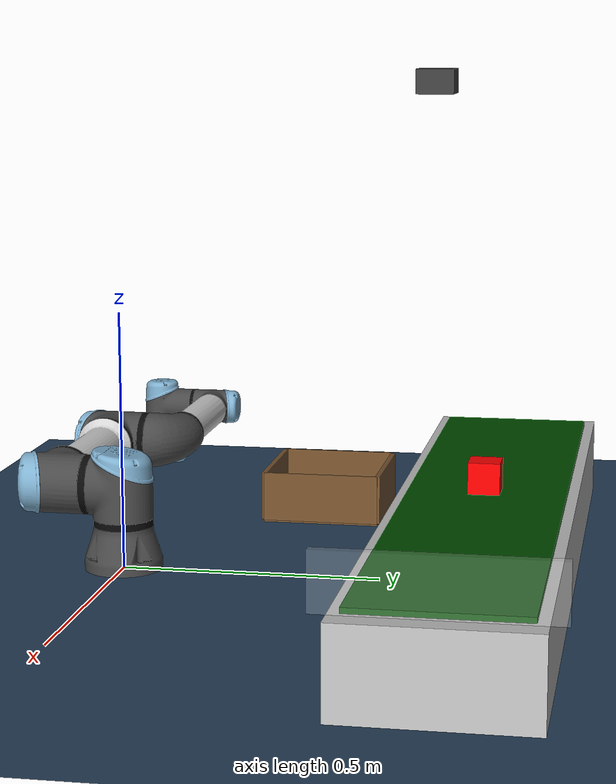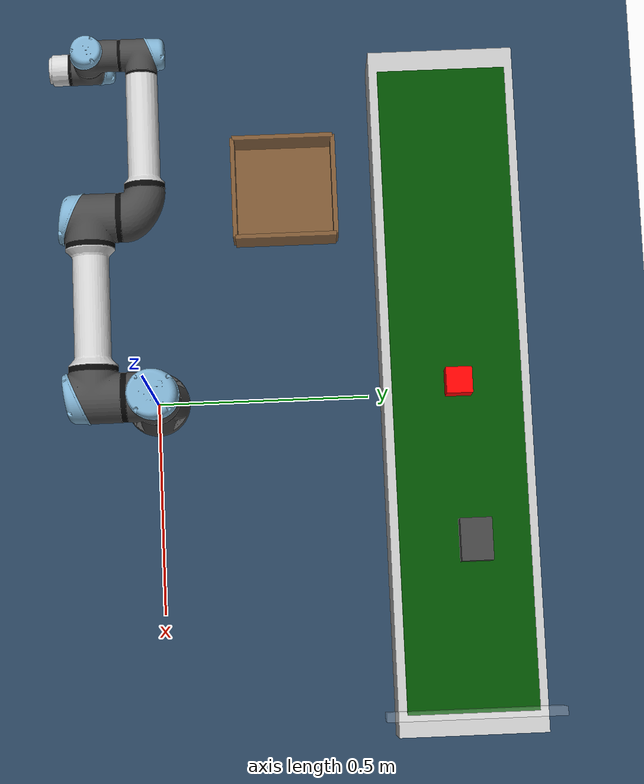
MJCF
<!-- original scene.xml from universal_robots_ur5e scene in Mujoco menagerire Github-->
<mujoco model="UR5E Scene">
  <include file="ur5e.xml"/>
  <include file="C:\Users\u3009531\PycharmProjects\PythonProject\mujoco_menagerie\robotiq_2f85\2f85.xml"/>

  <visual>
    <headlight diffuse="0.6 0.6 0.6" ambient="0.1 0.1 0.1" specular="0 0 0"/>
    <rgba haze="0.15 0.25 0.35 1"/>
    <global azimuth="120" elevation="-20"/>

  </visual>

  <asset>
    <texture type="skybox" builtin="gradient" rgb1="0.3 0.5 0.7" rgb2="0 0 0" width="512" height="3072"/>
    <texture type="2d" name="groundplane" builtin="checker" mark="edge" rgb1="0.2 0.3 0.4" rgb2="0.1 0.2 0.3"
      markrgb="0.8 0.8 0.8" width="300" height="300"/>
    <material name="groundplane" texture="groundplane" texuniform="true" texrepeat="5 5" reflectance="0.2"/>
  </asset>

  <default>
    <default class="wall_contact">
      <geom solref="0.05 0.1" solimp="0.95 0.99 0.001"/>
    </default>
  </default>

  <worldbody>
    <light pos="0 0 1.5" dir="0 0 -1" directional="true"/>
    <geom name="floor" size="0 0 0.05" type="plane" material="groundplane"/>

    <body name="conveyor_base" pos="0 0.7 0.08">
      <geom type="box" size="0.8 0.17 0.08" rgba="0.75 0.75 0.75 1"/>
    </body>

    <body name="belt" pos="0 0.7 0.16">
      <geom name="belt_geom" type="box"
        size="0.75 0.15 0.01"
        rgba="0 0.3 0 1"
        contype="1" conaffinity="1"
        friction="1.2 0.005 0.0001"
        solref="0.002 1"
        solimp="0.95 0.99 0.001"
        margin="0.001"
        gap="0" surfacevel="0.2 0 0"/>
      </body>

    <body name="box_body" pos="0 0.7 0.21">
      <freejoint name="box_joint"/>
      <inertial mass="0.05" pos="0 0 0"
           diaginertia="8e-5 8e-5 8e-5"/>
      <geom name="box_geom" type="box"
        size="0.03 0.03 0.03"
        rgba="1 0 0 1"
        mass="0.05"
        contype="1" conaffinity="1"
        friction="1.2 0.005 0.0001"
        solref="0.002 1"
        solimp="0.95 0.99 0.001"
        margin="0.001"
        priority="1"/>
        <site name="box_site" type="box" size="0.03 0.03 0.03" rgba="1 0 0 0"/>
        <site name="box_velocity_site" pos="0 0 0" size="0.03" rgba="0 0.2 1 0"/>
    </body>

    <geom name="wall1" class="wall_contact" type="box" size="0.01 0.2 0.05" pos="-0.75 0.7 0.21" rgba="0.2 0.2 0.8 0"/>

    <body pos="0.75 0.7 0.21" >
      <geom name="wall2" class="wall_contact" type="box" size="0.01 0.2 0.05" rgba="1 1 1 0.1"/>
    </body>

    <body name="overhead_camera_body" pos="0.4 0.65 0.95">
      <geom type="box" size="0.04 0.03 0.02" rgba="0.25 0.25 0.25 1" contype="0" conaffinity="0"/>
      <camera name="overhead_cam" mode="fixed" pos="0 0 0" xyaxes="1 0 0 0 1 0" fovy="45" resolution="640 480"/>
    </body>

    <body name="drop_box" pos="-0.5 0.32 0.01">
    <!-- Box floor -->
      <geom type="box" size="0.12 0.12 0.005" rgba="0.6 0.4 0.2 0.8"  contype="1" conaffinity="1"
        friction="1.2 0.005 0.0001" solref="0.002 1" solimp="0.95 0.99 0.001" margin="0.001" gap="0"/>
      <!-- Front wall (Y+) -->
      <geom type="box" size="0.12 0.005 0.05" pos="0 0.12 0.05" rgba="0.6 0.4 0.2 0.8" friction="0.8 0.005 0.001"/>
      <!-- Back wall (Y-) -->
      <geom type="box" size="0.12 0.005 0.05" pos="0 -0.12 0.05" rgba="0.6 0.4 0.2 0.8" friction="0.8 0.005 0.001"/>
      <!-- Left wall (X-) -->
      <geom type="box" size="0.005 0.12 0.05" pos="-0.12 0 0.05" rgba="0.6 0.4 0.2 0.8" friction="0.8 0.005 0.001"/>
      <!-- Right wall (X+) -->
      <geom type="box" size="0.005 0.12 0.05" pos="0.12 0 0.05" rgba="0.6 0.4 0.2 0.8" friction="0.8 0.005 0.001"/>
    </body>

<!--&lt;!&ndash; Ball &ndash;&gt;-->

  </worldbody>

  <equality>

    <weld body1="base_mount" body2="wrist_3_link"
          anchor="0 0.1 0"
          relpose="0 0 0 0.707 0.707 0 0"
          solref="0.01 1"
          solimp="0.9 0.95 0.001"/>
  </equality>

   <sensor>
     <framelinvel name="vel2" objtype="site" objname="box_velocity_site"/>
     <velocimeter name="box_velocity" site="box_velocity_site"/>
     <touch name="collisions" site="box_site"/>

  </sensor>

  <actuator>
    <velocity name="box_velocity" joint="box_joint" ctrlrange="-20 20"/>
  </actuator>

  <contact>

    <exclude body1="base_mount" body2="wrist_3_link"/>
    <exclude body1="base2"      body2="wrist_3_link"/>
    <exclude body1="base_mount" body2="wrist_2_link"/>
    <exclude body1="base2"      body2="wrist_2_link"/>
    <exclude body1="base2"      body2="forearm_link"/>
  </contact>

</mujoco>

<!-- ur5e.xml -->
<mujoco model="ur5e">
  <compiler angle="radian" meshdir="C:\Users\u3009531\PycharmProjects\PythonProject\mujoco_menagerie\universal_robots_ur5e\assets" autolimits="true"/>

  <option integrator="implicitfast"/>

  <default>
    <default class="ur5e">
      <material specular="0.5" shininess="0.25"/>
      <joint axis="0 1 0" range="-6.28319 6.28319" armature="0.1"/>
      <general gaintype="fixed" biastype="affine" ctrlrange="-6.2831 6.2831" gainprm="2000" biasprm="0 -2000 -400"
        forcerange="-150 150"/>
      <default class="size3">
        <default class="size3_limited">
          <joint range="-3.1415 3.1415"/>
          <general ctrlrange="-3.1415 3.1415"/>
        </default>
      </default>
      <default class="size1">
        <general gainprm="500" biasprm="0 -500 -100" forcerange="-28 28"/>
      </default>
      <default class="visual">
        <geom type="mesh" contype="0" conaffinity="0" group="2"/>
      </default>
      <default class="collision">
        <geom type="capsule" group="3"/>
        <default class="eef_collision">
          <geom type="cylinder"/>
        </default>
      </default>
      <site size="0.001" rgba="0.5 0.5 0.5 0.3" group="4"/>
    </default>
  </default>

  <asset>
    <material class="ur5e" name="black" rgba="0.033 0.033 0.033 1"/>
    <material class="ur5e" name="jointgray" rgba="0.278 0.278 0.278 1"/>
    <material class="ur5e" name="linkgray" rgba="0.82 0.82 0.82 1"/>
    <material class="ur5e" name="urblue" rgba="0.49 0.678 0.8 1"/>

    <mesh class="ur5e" name="base_0" file="C:\Users\u3009531\PycharmProjects\PythonProject\mujoco_menagerie\universal_robots_ur5e\assets\base_0.obj"/>
    <mesh class="ur5e" name="base_1" file="C:\Users\u3009531\PycharmProjects\PythonProject\mujoco_menagerie\universal_robots_ur5e\assets\base_1.obj"/>
    <mesh class="ur5e" name="shoulder_0" file="C:\Users\u3009531\PycharmProjects\PythonProject\mujoco_menagerie\universal_robots_ur5e\assets\shoulder_0.obj"/>
    <mesh class="ur5e" name="shoulder_1" file="C:\Users\u3009531\PycharmProjects\PythonProject\mujoco_menagerie\universal_robots_ur5e\assets\shoulder_1.obj"/>
    <mesh class="ur5e" name="shoulder_2" file="C:\Users\u3009531\PycharmProjects\PythonProject\mujoco_menagerie\universal_robots_ur5e\assets\shoulder_2.obj"/>
    <mesh class="ur5e" name="upperarm_0" file="C:\Users\u3009531\PycharmProjects\PythonProject\mujoco_menagerie\universal_robots_ur5e\assets\upperarm_0.obj"/>
    <mesh class="ur5e" name="upperarm_1" file="C:\Users\u3009531\PycharmProjects\PythonProject\mujoco_menagerie\universal_robots_ur5e\assets\upperarm_1.obj"/>
    <mesh class="ur5e" name="upperarm_2" file="C:\Users\u3009531\PycharmProjects\PythonProject\mujoco_menagerie\universal_robots_ur5e\assets\upperarm_2.obj"/>
    <mesh class="ur5e" name="upperarm_3" file="C:\Users\u3009531\PycharmProjects\PythonProject\mujoco_menagerie\universal_robots_ur5e\assets\upperarm_3.obj"/>
    <mesh class="ur5e" name="forearm_0" file="C:\Users\u3009531\PycharmProjects\PythonProject\mujoco_menagerie\universal_robots_ur5e\assets\forearm_0.obj"/>
    <mesh class="ur5e" name="forearm_1" file="C:\Users\u3009531\PycharmProjects\PythonProject\mujoco_menagerie\universal_robots_ur5e\assets\forearm_1.obj"/>
    <mesh class="ur5e" name="forearm_2" file="C:\Users\u3009531\PycharmProjects\PythonProject\mujoco_menagerie\universal_robots_ur5e\assets\forearm_2.obj"/>
    <mesh class="ur5e" name="forearm_3" file="C:\Users\u3009531\PycharmProjects\PythonProject\mujoco_menagerie\universal_robots_ur5e\assets\forearm_3.obj"/>
    <mesh class="ur5e" name="wrist1_0" file="C:\Users\u3009531\PycharmProjects\PythonProject\mujoco_menagerie\universal_robots_ur5e\assets\wrist1_0.obj"/>
    <mesh class="ur5e" name="wrist1_1" file="C:\Users\u3009531\PycharmProjects\PythonProject\mujoco_menagerie\universal_robots_ur5e\assets\wrist1_1.obj"/>
    <mesh class="ur5e" name="wrist1_2" file="C:\Users\u3009531\PycharmProjects\PythonProject\mujoco_menagerie\universal_robots_ur5e\assets\wrist1_2.obj"/>
    <mesh class="ur5e" name="wrist2_0" file="C:\Users\u3009531\PycharmProjects\PythonProject\mujoco_menagerie\universal_robots_ur5e\assets\wrist2_0.obj"/>
    <mesh class="ur5e" name="wrist2_1" file="C:\Users\u3009531\PycharmProjects\PythonProject\mujoco_menagerie\universal_robots_ur5e\assets\wrist2_1.obj"/>
    <mesh class="ur5e" name="wrist2_2" file="C:\Users\u3009531\PycharmProjects\PythonProject\mujoco_menagerie\universal_robots_ur5e\assets\wrist2_2.obj"/>
    <mesh class="ur5e" name="wrist3" file="C:\Users\u3009531\PycharmProjects\PythonProject\mujoco_menagerie\universal_robots_ur5e\assets\wrist3.obj"/>
  </asset>

  <worldbody>
    <light name="spotlight" mode="targetbodycom" target="wrist_2_link" pos="0 -1 2"/>
    <body name="base" quat="0 0 0 -1" childclass="ur5e">
      <inertial mass="4.0" pos="0 0 0" diaginertia="0.00443333156 0.00443333156 0.0072"/>
      <geom mesh="base_0" material="black" class="visual"/>
      <geom mesh="base_1" material="jointgray" class="visual"/>
      <body name="shoulder_link" pos="0 0 0.163">
        <inertial mass="3.7" pos="0 0 0" diaginertia="0.0102675 0.0102675 0.00666"/>
        <joint name="shoulder_pan_joint" class="size3" axis="0 0 1"/>
        <geom mesh="shoulder_0" material="urblue" class="visual"/>
        <geom mesh="shoulder_1" material="black" class="visual"/>
        <geom mesh="shoulder_2" material="jointgray" class="visual"/>
        <geom class="collision" size="0.06 0.06" pos="0 0 -0.04"/>
        <body name="upper_arm_link" pos="0 0.138 0" quat="1 0 1 0">
          <inertial mass="8.393" pos="0 0 0.2125" diaginertia="0.133886 0.133886 0.0151074"/>
          <joint name="shoulder_lift_joint" class="size3"/>
          <geom mesh="upperarm_0" material="linkgray" class="visual"/>
          <geom mesh="upperarm_1" material="black" class="visual"/>
          <geom mesh="upperarm_2" material="jointgray" class="visual"/>
          <geom mesh="upperarm_3" material="urblue" class="visual"/>
          <geom class="collision" pos="0 -0.04 0" quat="1 1 0 0" size="0.06 0.06"/>
          <geom class="collision" size="0.05 0.2" pos="0 0 0.2"/>
          <body name="forearm_link" pos="0 -0.131 0.425">
            <inertial mass="2.275" pos="0 0 0.196" diaginertia="0.0311796 0.0311796 0.004095"/>
            <joint name="elbow_joint" class="size3_limited"/>
            <geom mesh="forearm_0" material="urblue" class="visual"/>
            <geom mesh="forearm_1" material="linkgray" class="visual"/>
            <geom mesh="forearm_2" material="black" class="visual"/>
            <geom mesh="forearm_3" material="jointgray" class="visual"/>
            <geom class="collision" pos="0 0.08 0" quat="1 1 0 0" size="0.055 0.06"/>
            <geom class="collision" size="0.038 0.19" pos="0 0 0.2"/>
            <body name="wrist_1_link" pos="0 0 0.392" quat="1 0 1 0">
              <inertial mass="1.219" pos="0 0.127 0" diaginertia="0.0025599 0.0025599 0.0021942"/>
              <joint name="wrist_1_joint" class="size1"/>
              <geom mesh="wrist1_0" material="black" class="visual"/>
              <geom mesh="wrist1_1" material="urblue" class="visual"/>
              <geom mesh="wrist1_2" material="jointgray" class="visual"/>
              <geom class="collision" pos="0 0.05 0" quat="1 1 0 0" size="0.04 0.07"/>
              <body name="wrist_2_link" pos="0 0.127 0">
                <inertial mass="1.219" pos="0 0 0.1" diaginertia="0.0025599 0.0025599 0.0021942"/>
                <joint name="wrist_2_joint" axis="0 0 1" class="size1"/>
                <geom mesh="wrist2_0" material="black" class="visual"/>
                <geom mesh="wrist2_1" material="urblue" class="visual"/>
                <geom mesh="wrist2_2" material="jointgray" class="visual"/>
                <geom class="collision" size="0.04 0.06" pos="0 0 0.04"/>
                <geom class="collision" pos="0 0.02 0.1" quat="1 1 0 0" size="0.04 0.04"/>
                <body name="wrist_3_link" pos="0 0 0.1">
                  <inertial mass="0.1889" pos="0 0.0771683 0" quat="1 0 0 1"
                    diaginertia="0.000132134 9.90863e-05 9.90863e-05"/>
                  <joint name="wrist_3_joint" class="size1"/>
                  <geom material="linkgray" mesh="wrist3" class="visual"/>
                  <geom class="eef_collision" pos="0 0.08 0" quat="1 1 0 0" size="0.04 0.02"/>
                  <site name="attachment_site" pos="0 0.1 0" quat="-1 1 0 0"/>
                  <site name="ee_site" size="0.008" pos="0 0 0.02" rgba="1 0 0 1"/>
                </body>
              </body>
            </body>
          </body>
        </body>
      </body>
    </body>
  </worldbody>

  <actuator>
    <general class="size3" name="shoulder_pan" joint="shoulder_pan_joint"/>
    <general class="size3" name="shoulder_lift" joint="shoulder_lift_joint"/>
    <general class="size3_limited" name="elbow" joint="elbow_joint"/>
    <general class="size1" name="wrist_1" joint="wrist_1_joint"/>
    <general class="size1" name="wrist_2" joint="wrist_2_joint"/>
    <general class="size1" name="wrist_3" joint="wrist_3_joint"/>
  </actuator>

  <keyframe>
    <key name="home" qpos="-1.5708 -1.5708 1.5708 -1.5708 -1.5708 0" ctrl="-1.5708 -1.5708 1.5708 -1.5708 -1.5708 0"/>
  </keyframe>
</mujoco>

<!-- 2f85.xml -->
<mujoco model="robotiq_2f85">
  <compiler angle="radian" meshdir="C:\Users\u3009531\PycharmProjects\PythonProject\mujoco_menagerie\robotiq_2f85\assets" autolimits="true"/>

  <option cone="elliptic" impratio="10"/>

  <asset>
    <material name="metal" rgba="0.58 0.58 0.58 1"/>
    <material name="silicone" rgba="0.1882 0.1882 0.1882 1"/>
    <material name="gray" rgba="0.4627 0.4627 0.4627 1"/>
    <material name="black2" rgba="0.149 0.149 0.149 1"/>

    <mesh class="2f85" name="base_mount" file="C:\Users\u3009531\PycharmProjects\PythonProject\mujoco_menagerie\robotiq_2f85\assets\base_mount.stl"/>
    <mesh class="2f85" name='base' file="C:\Users\u3009531\PycharmProjects\PythonProject\mujoco_menagerie\robotiq_2f85\assets\base.stl"/>
    <mesh class="2f85" name="driver" file="C:\Users\u3009531\PycharmProjects\PythonProject\mujoco_menagerie\robotiq_2f85\assets\driver.stl"/>
    <mesh class="2f85" name="coupler" file="C:\Users\u3009531\PycharmProjects\PythonProject\mujoco_menagerie\robotiq_2f85\assets\coupler.stl"/>
    <mesh class="2f85" name="follower" file="C:\Users\u3009531\PycharmProjects\PythonProject\mujoco_menagerie\robotiq_2f85\assets\follower.stl"/>
    <mesh class="2f85" name="pad" file="C:\Users\u3009531\PycharmProjects\PythonProject\mujoco_menagerie\robotiq_2f85\assets\pad.stl"/>
    <mesh class="2f85" name="silicone_pad" file="C:\Users\u3009531\PycharmProjects\PythonProject\mujoco_menagerie\robotiq_2f85\assets\silicone_pad.stl"/>
    <mesh class="2f85" name="spring_link" file="C:\Users\u3009531\PycharmProjects\PythonProject\mujoco_menagerie\robotiq_2f85\assets\spring_link.stl"/>
  </asset>

  <default>
    <default class="2f85">
      <mesh scale="0.001 0.001 0.001"/>
      <general biastype="affine"/>

      <joint axis="1 0 0"/>
      <default class="driver">
        <joint range="0 0.8" armature="0.005" damping="0.1" solimplimit="0.95 0.99 0.001" solreflimit="0.005 1"/>
      </default>
      <default class="follower">
        <joint range="-0.872664 0.872664" armature="0.001" pos="0 -0.018 0.0065" solimplimit="0.95 0.99 0.001"
          solreflimit="0.005 1"/>
      </default>
      <default class="spring_link">
        <joint range="-0.29670597283 0.8" armature="0.001" stiffness="0.05" springref="2.62" damping="0.00125"/>
      </default>
      <default class="coupler">
        <joint range="-1.57 0" armature="0.001" solimplimit="0.95 0.99 0.001" solreflimit="0.005 1"/>
      </default>

      <default class="visual2">
        <geom type="mesh" contype="0" conaffinity="0" group="2"/>
      </default>
      <default class="collision2">
        <geom type="mesh" group="3"/>
        <default class="pad_box1">
          <geom mass="0" type="box" pos="0 -0.0026 0.028125" size="0.011 0.004 0.009375" friction="0.7"
            solimp="0.95 0.99 0.001" solref="0.004 1" priority="1" rgba="0.55 0.55 0.55 1"/>
        </default>
        <default class="pad_box2">
          <geom mass="0" type="box" pos="0 -0.0026 0.009375" size="0.011 0.004 0.009375" friction="0.6"
            solimp="0.95 0.99 0.001" solref="0.004 1" priority="1" rgba="0.45 0.45 0.45 1"/>
        </default>
      </default>
    </default>
  </default>

  <worldbody>
    <body name="base_mount" pos="0 0 0.007" childclass="2f85">
      <freejoint name="gripper_freejoint"/>
      <geom class="visual2" mesh="base_mount" material="black2"/>
      <geom class="collision2" mesh="base_mount"/>
      <body name="base2" pos="0 0 0.0038" quat="1 0 0 -1">
        <inertial mass="0.777441" pos="0 -2.70394e-05 0.0354675" quat="1 -0.00152849 0 0"
          diaginertia="0.000260285 0.000225381 0.000152708"/>
        <geom class="visual2" mesh="base" material="black2"/>
        <geom class="collision2" mesh="base"/>
        <site name="pinch" pos="0 0 0.145" type="sphere" group="5" rgba="0.9 0.9 0.9 1" size="0.005"/>
        <!-- Right-hand side 4-bar linkage -->
        <body name="right_driver" pos="0 0.0306011 0.054904">
          <inertial mass="0.00899563" pos="2.96931e-12 0.0177547 0.00107314" quat="0.681301 0.732003 0 0"
            diaginertia="1.72352e-06 1.60906e-06 3.22006e-07"/>
          <joint name="right_driver_joint" class="driver"/>
          <geom class="visual2" mesh="driver" material="gray"/>
          <geom class="collision2" mesh="driver"/>
          <body name="right_coupler" pos="0 0.0315 -0.0041">
            <inertial mass="0.0140974" pos="0 0.00301209 0.0232175" quat="0.705636 -0.0455904 0.0455904 0.705636"
              diaginertia="4.16206e-06 3.52216e-06 8.88131e-07"/>
            <joint name="right_coupler_joint" class="coupler"/>
            <geom class="visual2" mesh="coupler" material="black2"/>
            <geom class="collision2" mesh="coupler"/>
          </body>
        </body>
        <body name="right_spring_link" pos="0 0.0132 0.0609">
          <inertial mass="0.0221642" pos="-8.65005e-09 0.0181624 0.0212658" quat="0.663403 -0.244737 0.244737 0.663403"
            diaginertia="8.96853e-06 6.71733e-06 2.63931e-06"/>
          <joint name="right_spring_link_joint" class="spring_link"/>
          <geom class="visual2" mesh="spring_link" material="black2"/>
          <geom class="collision2" mesh="spring_link"/>
          <body name="right_follower" pos="0 0.055 0.0375">
            <inertial mass="0.0125222" pos="0 -0.011046 0.0124786" quat="1 0.1664 0 0"
              diaginertia="2.67415e-06 2.4559e-06 6.02031e-07"/>
            <joint name="right_follower_joint" class="follower"/>
            <geom class="visual2" mesh="follower" material="black2"/>
            <geom class="collision2" mesh="follower"/>
            <body name="right_pad" pos="0 -0.0189 0.01352">
              <geom class="pad_box1" name="right_pad1"/>
              <geom class="pad_box2" name="right_pad2"/>
              <inertial mass="0.0035" pos="0 -0.0025 0.0185" quat="0.707107 0 0 0.707107"
                diaginertia="4.73958e-07 3.64583e-07 1.23958e-07"/>
              <geom class="visual2" mesh="pad"/>
              <body name="right_silicone_pad">
                <geom class="visual2" mesh="silicone_pad" material="black2"/>
              </body>
            </body>
          </body>
        </body>
        <!-- Left-hand side 4-bar linkage -->
        <body name="left_driver" pos="0 -0.0306011 0.054904" quat="0 0 0 1">
          <inertial mass="0.00899563" pos="0 0.0177547 0.00107314" quat="0.681301 0.732003 0 0"
            diaginertia="1.72352e-06 1.60906e-06 3.22006e-07"/>
          <joint name="left_driver_joint" class="driver"/>
          <geom class="visual2" mesh="driver" material="gray"/>
          <geom class="collision2" mesh="driver"/>
          <body name="left_coupler" pos="0 0.0315 -0.0041">
            <inertial mass="0.0140974" pos="0 0.00301209 0.0232175" quat="0.705636 -0.0455904 0.0455904 0.705636"
              diaginertia="4.16206e-06 3.52216e-06 8.88131e-07"/>
            <joint name="left_coupler_joint" class="coupler"/>
            <geom class="visual2" mesh="coupler" material="black2"/>
            <geom class="collision2" mesh="coupler"/>
          </body>
        </body>
        <body name="left_spring_link" pos="0 -0.0132 0.0609" quat="0 0 0 1">
          <inertial mass="0.0221642" pos="-8.65005e-09 0.0181624 0.0212658" quat="0.663403 -0.244737 0.244737 0.663403"
            diaginertia="8.96853e-06 6.71733e-06 2.63931e-06"/>
          <joint name="left_spring_link_joint" class="spring_link"/>
          <geom class="visual2" mesh="spring_link" material="black2"/>
          <geom class="collision2" mesh="spring_link"/>
          <body name="left_follower" pos="0 0.055 0.0375">
            <inertial mass="0.0125222" pos="0 -0.011046 0.0124786" quat="1 0.1664 0 0"
              diaginertia="2.67415e-06 2.4559e-06 6.02031e-07"/>
            <joint name="left_follower_joint" class="follower"/>
            <geom class="visual2" mesh="follower" material="black2"/>
            <geom class="collision2" mesh="follower"/>
            <body name="left_pad" pos="0 -0.0189 0.01352">
              <geom class="pad_box1" name="left_pad1"/>
              <geom class="pad_box2" name="left_pad2"/>
              <inertial mass="0.0035" pos="0 -0.0025 0.0185" quat="1 0 0 1"
                diaginertia="4.73958e-07 3.64583e-07 1.23958e-07"/>
              <geom class="visual2" mesh="pad"/>
              <body name="left_silicone_pad">
                <geom class="visual2" mesh="silicone_pad" material="black2"/>
              </body>
            </body>
          </body>
        </body>
      </body>
    </body>
  </worldbody>

  <contact>
    <exclude body1="base2" body2="left_driver"/>
    <exclude body1="base2" body2="right_driver"/>
    <exclude body1="base2" body2="left_spring_link"/>
    <exclude body1="base2" body2="right_spring_link"/>
    <exclude body1="right_coupler" body2="right_follower"/>
    <exclude body1="left_coupler" body2="left_follower"/>
  </contact>

  <tendon>
    <fixed name="split">
      <joint joint="right_driver_joint" coef="0.5"/>
      <joint joint="left_driver_joint" coef="0.5"/>
    </fixed>
  </tendon>

  <equality>
    <connect anchor="0 0 0" body1="right_follower" body2="right_coupler" solimp="0.95 0.99 0.001" solref="0.005 1"/>
    <connect anchor="0 0 0" body1="left_follower" body2="left_coupler" solimp="0.95 0.99 0.001" solref="0.005 1"/>
    <joint joint1="right_driver_joint" joint2="left_driver_joint" polycoef="0 1 0 0 0" solimp="0.95 0.99 0.001"
      solref="0.005 1"/>
  </equality>

  <actuator>
    <general class="2f85" name="fingers_actuator" tendon="split" forcerange="-5 5" ctrlrange="0 255"
      gainprm="0.3137255 0 0" biasprm="0 -100 -10"/>
  </actuator>
</mujoco>
